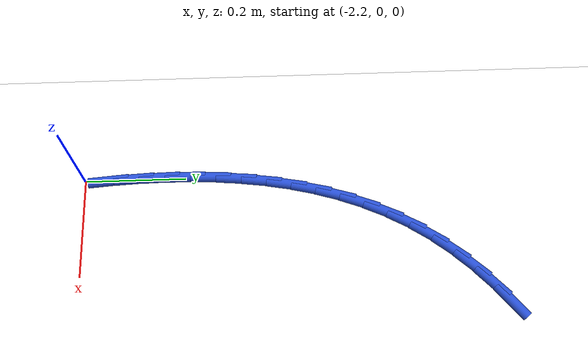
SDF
<sdf version="1.6">
 <world name="default">
  <model name="ground_plane">
   <static>1</static>
   <link name="link">
    <collision name="collision">
     <geometry><plane><normal>0 0 1</normal><size>100 100</size></plane></geometry>
     <surface><friction><ode><mu>100</mu><mu2>50</mu2></ode></friction></surface>
    </collision>
    <visual name="visual">
     <cast_shadows>0</cast_shadows>
     <geometry><plane><normal>0 0 1</normal><size>100 100</size></plane></geometry>
     <material>
      <script><uri>file://media/materials/scripts/gazebo.material</uri><name>Gazebo/WhiteGlow</name></script>
     </material>
    </visual>
   </link>
  </model>
  <model name="line">
   <link name="link_52">
    <pose>-1.9230319821082007 0.8161707165368227 0.01 0 1.57 0.6859863716296386</pose>
    <collision name="collision">
     <geometry><cylinder><radius>0.01</radius><length>0.08</length></cylinder></geometry>
    </collision>
    <visual name="visual">
     <material>
      <script><name>Gazebo/Blue</name><uri>file://media/materials/scripts/gazebo.material</uri></script>
     </material>
     <geometry><cylinder><radius>0.01</radius><length>0.08</length></cylinder></geometry>
    </visual>
   </link>
   <link name="link_53">
    <pose>-1.9622727483564508 0.7840478047372582 0.01 0 1.57 0.7595925925161336</pose>
    <collision name="collision">
     <geometry><cylinder><radius>0.01</radius><length>0.08</length></cylinder></geometry>
    </collision>
    <visual name="visual">
     <material>
      <script><name>Gazebo/Blue</name><uri>file://media/materials/scripts/gazebo.material</uri></script>
     </material>
     <geometry><cylinder><radius>0.01</radius><length>0.08</length></cylinder></geometry>
    </visual>
   </link>
   <link name="link_54">
    <pose>-1.998964406272702 0.7492026061301803 0.01 0 1.57 0.8342014682254628</pose>
    <collision name="collision">
     <geometry><cylinder><radius>0.01</radius><length>0.08</length></cylinder></geometry>
    </collision>
    <visual name="visual">
     <material>
      <script><name>Gazebo/Blue</name><uri>file://media/materials/scripts/gazebo.material</uri></script>
     </material>
     <geometry><cylinder><radius>0.01</radius><length>0.08</length></cylinder></geometry>
    </visual>
   </link>
   <link name="link_55">
    <pose>-2.032807926188609 0.7118833475429014 0.01 0 1.57 0.9107140737216107</pose>
    <collision name="collision">
     <geometry><cylinder><radius>0.01</radius><length>0.08</length></cylinder></geometry>
    </collision>
    <visual name="visual">
     <material>
      <script><name>Gazebo/Blue</name><uri>file://media/materials/scripts/gazebo.material</uri></script>
     </material>
     <geometry><cylinder><radius>0.01</radius><length>0.08</length></cylinder></geometry>
    </visual>
   </link>
   <link name="link_56">
    <pose>-2.0635042784358237 0.6723382558027338 0.01 0 1.57 0.9899503967738145</pose>
    <collision name="collision">
     <geometry><cylinder><radius>0.01</radius><length>0.08</length></cylinder></geometry>
    </collision>
    <visual name="visual">
     <material>
      <script><name>Gazebo/Blue</name><uri>file://media/materials/scripts/gazebo.material</uri></script>
     </material>
     <geometry><cylinder><radius>0.01</radius><length>0.08</length></cylinder></geometry>
    </visual>
   </link>
   <link name="link_57">
    <pose>-2.0907592811038733 0.6308149324000812 0.01 0 1.57 1.0694534594975376</pose>
    <collision name="collision">
     <geometry><cylinder><radius>0.01</radius><length>0.08</length></cylinder></geometry>
    </collision>
    <visual name="visual">
     <material>
      <script><name>Gazebo/Blue</name><uri>file://media/materials/scripts/gazebo.material</uri></script>
     </material>
     <geometry><cylinder><radius>0.01</radius><length>0.08</length></cylinder></geometry>
    </visual>
   </link>
   <link name="link_58">
    <pose>-2.1144786287812 0.5875351957406681 0.01 0 1.57 1.1447221137645243</pose>
    <collision name="collision">
     <geometry><cylinder><radius>0.01</radius><length>0.08</length></cylinder></geometry>
    </collision>
    <visual name="visual">
     <material>
      <script><name>Gazebo/Blue</name><uri>file://media/materials/scripts/gazebo.material</uri></script>
     </material>
     <geometry><cylinder><radius>0.01</radius><length>0.08</length></cylinder></geometry>
    </visual>
   </link>
   <link name="link_59">
    <pose>-2.1348344695269077 0.542686493043836 0.01 0 1.57 1.2149536750144614</pose>
    <collision name="collision">
     <geometry><cylinder><radius>0.01</radius><length>0.08</length></cylinder></geometry>
    </collision>
    <visual name="visual">
     <material>
      <script><name>Gazebo/Blue</name><uri>file://media/materials/scripts/gazebo.material</uri></script>
     </material>
     <geometry><cylinder><radius>0.01</radius><length>0.08</length></cylinder></geometry>
    </visual>
   </link>
   <link name="link_60">
    <pose>-2.152017460521252 0.4964538839433895 0.01 0 1.57 1.279893554286889</pose>
    <collision name="collision">
     <geometry><cylinder><radius>0.01</radius><length>0.08</length></cylinder></geometry>
    </collision>
    <visual name="visual">
     <material>
      <script><name>Gazebo/Blue</name><uri>file://media/materials/scripts/gazebo.material</uri></script>
     </material>
     <geometry><cylinder><radius>0.01</radius><length>0.08</length></cylinder></geometry>
    </visual>
   </link>
   <link name="link_61">
    <pose>-2.1662182589444896 0.44902242807313303 0.01 0 1.57 1.3395026013068694</pose>
    <collision name="collision">
     <geometry><cylinder><radius>0.01</radius><length>0.08</length></cylinder></geometry>
    </collision>
    <visual name="visual">
     <material>
      <script><name>Gazebo/Blue</name><uri>file://media/materials/scripts/gazebo.material</uri></script>
     </material>
     <geometry><cylinder><radius>0.01</radius><length>0.08</length></cylinder></geometry>
    </visual>
   </link>
   <link name="link_62">
    <pose>-2.177627521976875 0.40057718506687157 0.01 0 1.57 1.3939013921778294</pose>
    <collision name="collision">
     <geometry><cylinder><radius>0.01</radius><length>0.08</length></cylinder></geometry>
    </collision>
    <visual name="visual">
     <material>
      <script><name>Gazebo/Blue</name><uri>file://media/materials/scripts/gazebo.material</uri></script>
     </material>
     <geometry><cylinder><radius>0.01</radius><length>0.08</length></cylinder></geometry>
    </visual>
   </link>
   <link name="link_63">
    <pose>-2.186435906798664 0.351303214558409 0.01 0 1.57 1.4433169912706783</pose>
    <collision name="collision">
     <geometry><cylinder><radius>0.01</radius><length>0.08</length></cylinder></geometry>
    </collision>
    <visual name="visual">
     <material>
      <script><name>Gazebo/Blue</name><uri>file://media/materials/scripts/gazebo.material</uri></script>
     </material>
     <geometry><cylinder><radius>0.01</radius><length>0.08</length></cylinder></geometry>
    </visual>
   </link>
   <link name="link_64">
    <pose>-2.192834070590114 0.30138557618155076 0.01 0 1.57 1.4880379596503301</pose>
    <collision name="collision">
     <geometry><cylinder><radius>0.01</radius><length>0.08</length></cylinder></geometry>
    </collision>
    <visual name="visual">
     <material>
      <script><name>Gazebo/Blue</name><uri>file://media/materials/scripts/gazebo.material</uri></script>
     </material>
     <geometry><cylinder><radius>0.01</radius><length>0.08</length></cylinder></geometry>
    </visual>
   </link>
   <link name="link_65">
    <pose>-2.19701267053148 0.25100932957010097 0.01 0 1.57 1.5283794942295408</pose>
    <collision name="collision">
     <geometry><cylinder><radius>0.01</radius><length>0.08</length></cylinder></geometry>
    </collision>
    <visual name="visual">
     <material>
      <script><name>Gazebo/Blue</name><uri>file://media/materials/scripts/gazebo.material</uri></script>
     </material>
     <geometry><cylinder><radius>0.01</radius><length>0.08</length></cylinder></geometry>
    </visual>
   </link>
   <link name="link_66">
    <pose>-2.1991623638030187 0.20035953435786402 0.01 0 1.57 1.5646581635604264</pose>
    <collision name="collision">
     <geometry><cylinder><radius>0.01</radius><length>0.08</length></cylinder></geometry>
    </collision>
    <visual name="visual">
     <material>
      <script><name>Gazebo/Blue</name><uri>file://media/materials/scripts/gazebo.material</uri></script>
     </material>
     <geometry><cylinder><radius>0.01</radius><length>0.08</length></cylinder></geometry>
    </visual>
   </link>
   <link name="link_67">
    <pose>-2.199473807584985 0.14962125017864505 0.01 0 1.57 -1.5444180998727453</pose>
    <collision name="collision">
     <geometry><cylinder><radius>0.01</radius><length>0.08</length></cylinder></geometry>
    </collision>
    <visual name="visual">
     <material>
      <script><name>Gazebo/Blue</name><uri>file://media/materials/scripts/gazebo.material</uri></script>
     </material>
     <geometry><cylinder><radius>0.01</radius><length>0.08</length></cylinder></geometry>
    </visual>
   </link>
   <link name="link_68">
    <pose>-2.198137659057635 0.09897953666624791 0.01 0 1.57 -1.5152948626477376</pose>
    <collision name="collision">
     <geometry><cylinder><radius>0.01</radius><length>0.08</length></cylinder></geometry>
    </collision>
    <visual name="visual">
     <material>
      <script><name>Gazebo/Blue</name><uri>file://media/materials/scripts/gazebo.material</uri></script>
     </material>
     <geometry><cylinder><radius>0.01</radius><length>0.08</length></cylinder></geometry>
    </visual>
   </link>
   <link name="link_69">
    <pose>-2.1953394785361056 0.048614977986031524 0.01 0 1.57 -1.4874704664132132</pose>
    <collision name="collision">
     <geometry><cylinder><radius>0.01</radius><length>0.08</length></cylinder></geometry>
    </collision>
    <visual name="visual">
     <material>
      <script><name>Gazebo/Blue</name><uri>file://media/materials/scripts/gazebo.material</uri></script>
     </material>
     <geometry><cylinder><radius>0.01</radius><length>0.08</length></cylinder></geometry>
    </visual>
   </link>
  </model>
 </world>
</sdf>
